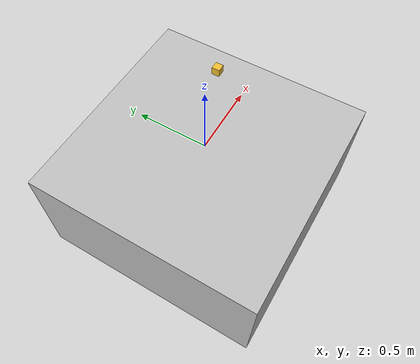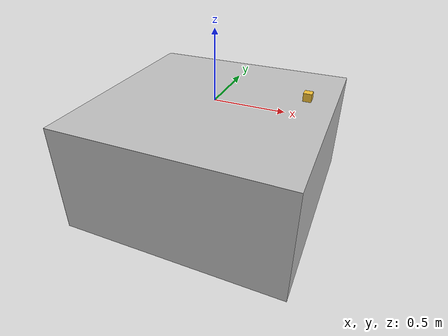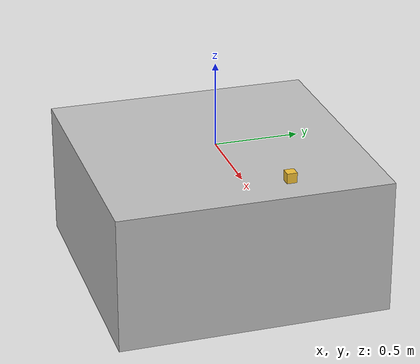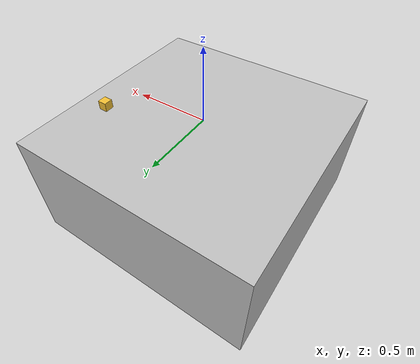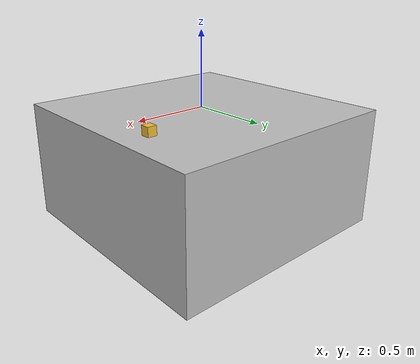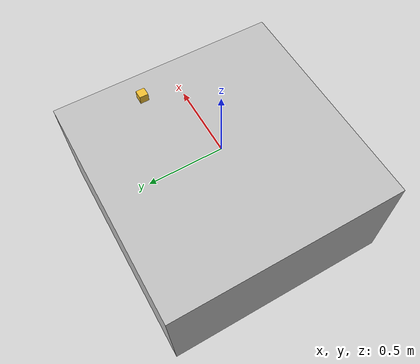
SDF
<?xml version="1.0"?>
<sdf version="1.8">
  <world name="ur_hande_tabletop">
    <scene>
      <ambient>0.6 0.6 0.6 1</ambient>
      <background>0.85 0.87 0.9 1</background>
      <shadows>true</shadows>
    </scene>

    <light type="directional" name="sun">
      <cast_shadows>true</cast_shadows>
      <pose>0 0 10 0 0 0</pose>
      <diffuse>0.9 0.9 0.9 1</diffuse>
      <specular>0.2 0.2 0.2 1</specular>
      <attenuation>
        <range>1000</range>
        <constant>0.9</constant>
        <linear>0.01</linear>
        <quadratic>0.001</quadratic>
      </attenuation>
      <direction>-0.4 0.2 -0.9</direction>
    </light>

    <!-- Static desk/table. Top surface sits at z=0 for easy robot spawn at z=0. -->
    <model name="table">
      <static>true</static>
      <pose>0 0 -0.4 0 0 0</pose>
      <link name="table_link">
        <collision name="table_collision">
          <geometry>
            <box>
              <size>1.6 1.6 0.8</size>
            </box>
          </geometry>
          <surface>
            <friction>
              <ode>
                <mu>1.0</mu>
                <mu2>1.0</mu2>
              </ode>
            </friction>
          </surface>
        </collision>
        <visual name="table_visual">
          <geometry>
            <box>
              <size>1.6 1.6 0.8</size>
            </box>
          </geometry>
          <material>
            <ambient>0.75 0.75 0.75 1</ambient>
            <diffuse>0.75 0.75 0.75 1</diffuse>
            <specular>0.1 0.1 0.1 1</specular>
          </material>
        </visual>
      </link>
    </model>

    <!-- Small cube target for arm + gripper interaction. -->
    <model name="target_cube">
      <static>false</static>
      <pose>0.60 0.25 0.03 0 0 0</pose>
      <link name="cube_link">
        <inertial>
          <mass>0.2</mass>
          <inertia>
            <ixx>0.00012</ixx>
            <ixy>0</ixy>
            <ixz>0</ixz>
            <iyy>0.00012</iyy>
            <iyz>0</iyz>
            <izz>0.00012</izz>
          </inertia>
        </inertial>
        <collision name="cube_collision">
          <geometry>
            <box>
              <size>0.06 0.06 0.06</size>
            </box>
          </geometry>
          <surface>
            <friction>
              <ode>
                <mu>0.9</mu>
                <mu2>0.9</mu2>
              </ode>
            </friction>
          </surface>
        </collision>
        <visual name="cube_visual">
          <geometry>
            <box>
              <size>0.06 0.06 0.06</size>
            </box>
          </geometry>
          <material>
            <ambient>0.95 0.75 0.2 1</ambient>
            <diffuse>0.95 0.75 0.2 1</diffuse>
            <specular>0.1 0.1 0.1 1</specular>
          </material>
        </visual>
      </link>
    </model>
  </world>
</sdf>
